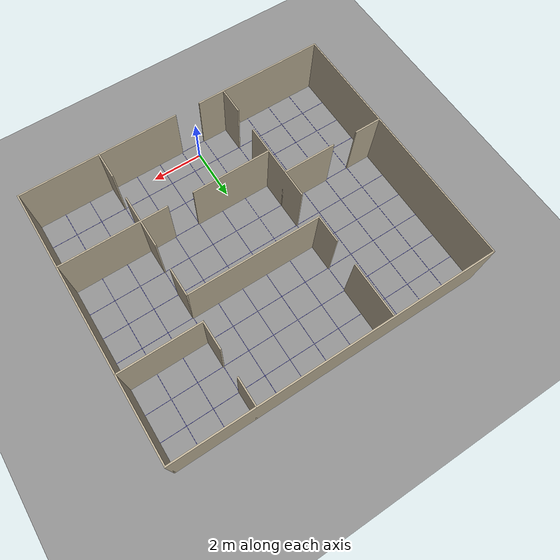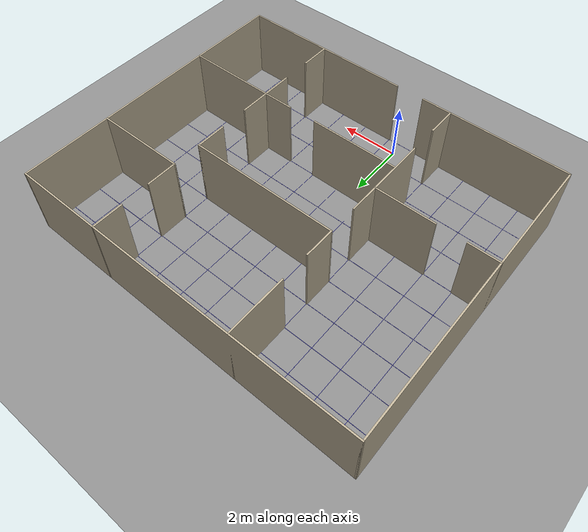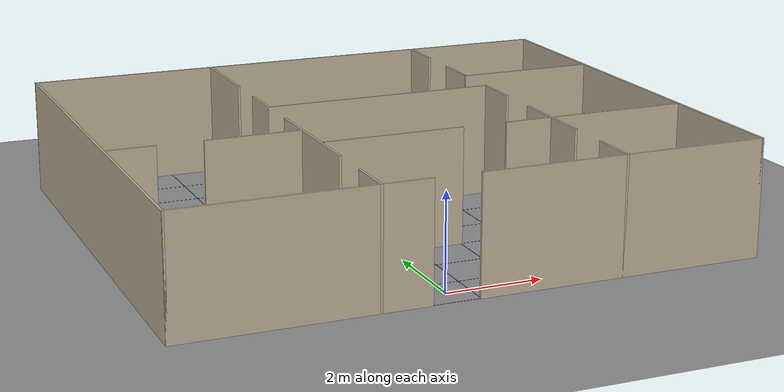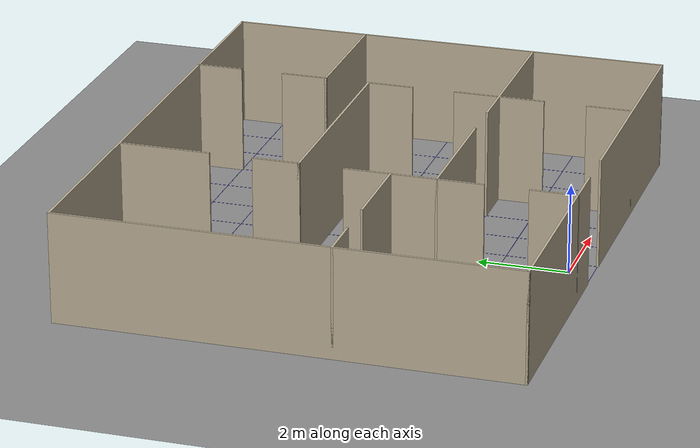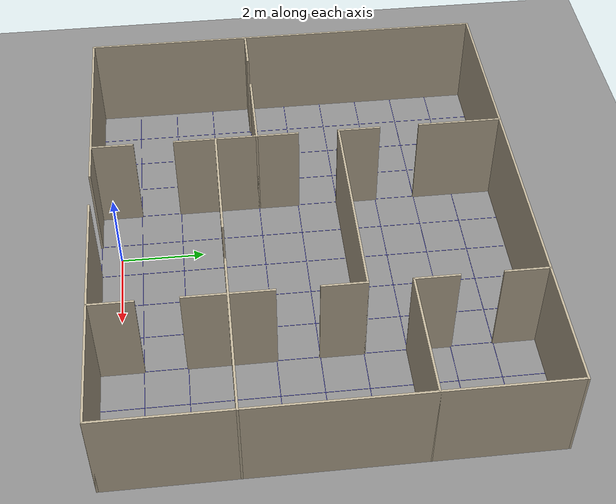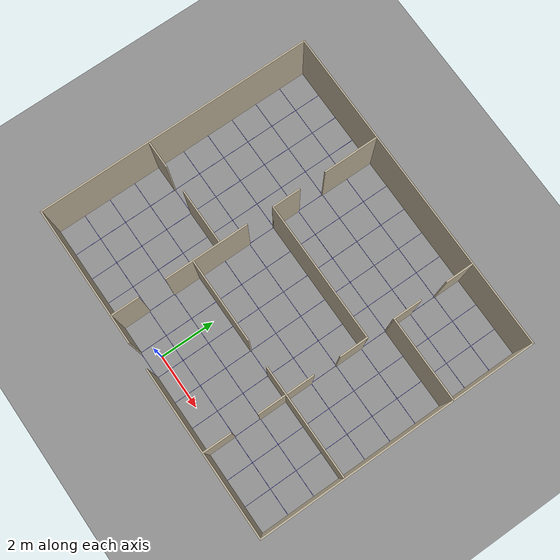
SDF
<sdf version="1.9">
 <world name="rooms_small_4">
  <physics name="1ms" type="ignore">
   <max_step_size>0.001</max_step_size>
   <real_time_factor>1.0</real_time_factor>
  </physics>
  <plugin filename="gz-sim-physics-system" name="gz::sim::systems::Physics"/>
  <plugin filename="gz-sim-sensors-system" name="gz::sim::systems::Sensors">
   <render_engine>ogre2</render_engine>
  </plugin>
  <plugin filename="gz-sim-user-commands-system" name="gz::sim::systems::UserCommands"/>
  <plugin filename="gz-sim-scene-broadcaster-system" name="gz::sim::systems::SceneBroadcaster"/>
  <plugin filename="gz-sim-imu-system" name="gz::sim::systems::Imu"/>
  <plugin filename="gz-sim-navsat-system" name="gz::sim::systems::NavSat"/>
  <scene><ambient>0.8 0.8 0.8</ambient><background>0.8 0.8 0.8</background></scene>
  <spherical_coordinates>
   <latitude_deg>-35.363262</latitude_deg>
   <longitude_deg>149.165237</longitude_deg>
   <elevation>584</elevation>
   <heading_deg>0</heading_deg>
   <surface_model>EARTH_WGS84</surface_model>
  </spherical_coordinates>
  <light type="directional" name="sun">
   <cast_shadows>false</cast_shadows>
   <pose>0 0 10 0 0 0</pose>
   <diffuse>0.9 0.9 0.9 1</diffuse>
   <direction>-0.3 0.2 -0.9</direction>
  </light>
  <model name="ground">
   <static>true</static>
   <link name="link">
    <collision name="c"><geometry><plane><normal>0 0 1</normal><size>60 60</size></plane></geometry></collision>
    <visual name="v">
     <geometry><plane><normal>0 0 1</normal><size>60 60</size></plane></geometry>
     <material><ambient>0.55 0.55 0.55 1</ambient><diffuse>0.55 0.55 0.55 1</diffuse></material>
    </visual>
   </link>
  </model>
  <model name="maze">
   <static>true</static>
   <link name="h0_0">
    <pose>0.500 9.500 1.220 0 0 0</pose>
    <collision name="c"><geometry><box><size>12.05 0.05 2.44</size></box></geometry></collision>
    <visual name="v">
     <geometry><box><size>12.05 0.05 2.44</size></box></geometry>
     <material><ambient>0.75 0.7 0.6 1</ambient><diffuse>0.75 0.7 0.6 1</diffuse></material>
    </visual>
   </link>
   <link name="h3_9">
    <pose>5.000 6.500 1.220 0 0 0</pose>
    <collision name="c"><geometry><box><size>3.05 0.05 2.44</size></box></geometry></collision>
    <visual name="v">
     <geometry><box><size>3.05 0.05 2.44</size></box></geometry>
     <material><ambient>0.75 0.7 0.6 1</ambient><diffuse>0.75 0.7 0.6 1</diffuse></material>
    </visual>
   </link>
   <link name="h4_4">
    <pose>1.000 5.500 1.220 0 0 0</pose>
    <collision name="c"><geometry><box><size>5.05 0.05 2.44</size></box></geometry></collision>
    <visual name="v">
     <geometry><box><size>5.05 0.05 2.44</size></box></geometry>
     <material><ambient>0.75 0.7 0.6 1</ambient><diffuse>0.75 0.7 0.6 1</diffuse></material>
    </visual>
   </link>
   <link name="h6_0">
    <pose>-5.000 3.500 1.220 0 0 0</pose>
    <collision name="c"><geometry><box><size>1.05 0.05 2.44</size></box></geometry></collision>
    <visual name="v">
     <geometry><box><size>1.05 0.05 2.44</size></box></geometry>
     <material><ambient>0.75 0.7 0.6 1</ambient><diffuse>0.75 0.7 0.6 1</diffuse></material>
    </visual>
   </link>
   <link name="h6_2">
    <pose>-2.500 3.500 1.220 0 0 0</pose>
    <collision name="c"><geometry><box><size>2.05 0.05 2.44</size></box></geometry></collision>
    <visual name="v">
     <geometry><box><size>2.05 0.05 2.44</size></box></geometry>
     <material><ambient>0.75 0.7 0.6 1</ambient><diffuse>0.75 0.7 0.6 1</diffuse></material>
    </visual>
   </link>
   <link name="h7_4">
    <pose>0.000 2.500 1.220 0 0 0</pose>
    <collision name="c"><geometry><box><size>3.05 0.05 2.44</size></box></geometry></collision>
    <visual name="v">
     <geometry><box><size>3.05 0.05 2.44</size></box></geometry>
     <material><ambient>0.75 0.7 0.6 1</ambient><diffuse>0.75 0.7 0.6 1</diffuse></material>
    </visual>
   </link>
   <link name="h7_8">
    <pose>4.500 2.500 1.220 0 0 0</pose>
    <collision name="c"><geometry><box><size>4.05 0.05 2.44</size></box></geometry></collision>
    <visual name="v">
     <geometry><box><size>4.05 0.05 2.44</size></box></geometry>
     <material><ambient>0.75 0.7 0.6 1</ambient><diffuse>0.75 0.7 0.6 1</diffuse></material>
    </visual>
   </link>
   <link name="h10_0">
    <pose>-3.000 -0.500 1.220 0 0 0</pose>
    <collision name="c"><geometry><box><size>5.05 0.05 2.44</size></box></geometry></collision>
    <visual name="v">
     <geometry><box><size>5.05 0.05 2.44</size></box></geometry>
     <material><ambient>0.75 0.7 0.6 1</ambient><diffuse>0.75 0.7 0.6 1</diffuse></material>
    </visual>
   </link>
   <link name="h10_6">
    <pose>3.500 -0.500 1.220 0 0 0</pose>
    <collision name="c"><geometry><box><size>6.05 0.05 2.44</size></box></geometry></collision>
    <visual name="v">
     <geometry><box><size>6.05 0.05 2.44</size></box></geometry>
     <material><ambient>0.75 0.7 0.6 1</ambient><diffuse>0.75 0.7 0.6 1</diffuse></material>
    </visual>
   </link>
   <link name="v0_0">
    <pose>-5.500 4.500 1.220 0 0 0</pose>
    <collision name="c"><geometry><box><size>0.05 10.05 2.44</size></box></geometry></collision>
    <visual name="v">
     <geometry><box><size>0.05 10.05 2.44</size></box></geometry>
     <material><ambient>0.75 0.7 0.6 1</ambient><diffuse>0.75 0.7 0.6 1</diffuse></material>
    </visual>
   </link>
   <link name="v4_0">
    <pose>-1.500 8.500 1.220 0 0 0</pose>
    <collision name="c"><geometry><box><size>0.05 2.05 2.44</size></box></geometry></collision>
    <visual name="v">
     <geometry><box><size>0.05 2.05 2.44</size></box></geometry>
     <material><ambient>0.75 0.7 0.6 1</ambient><diffuse>0.75 0.7 0.6 1</diffuse></material>
    </visual>
   </link>
   <link name="v4_3">
    <pose>-1.500 6.000 1.220 0 0 0</pose>
    <collision name="c"><geometry><box><size>0.05 1.05 2.44</size></box></geometry></collision>
    <visual name="v">
     <geometry><box><size>0.05 1.05 2.44</size></box></geometry>
     <material><ambient>0.75 0.7 0.6 1</ambient><diffuse>0.75 0.7 0.6 1</diffuse></material>
    </visual>
   </link>
   <link name="v4_5">
    <pose>-1.500 3.000 1.220 0 0 0</pose>
    <collision name="c"><geometry><box><size>0.05 3.05 2.44</size></box></geometry></collision>
    <visual name="v">
     <geometry><box><size>0.05 3.05 2.44</size></box></geometry>
     <material><ambient>0.75 0.7 0.6 1</ambient><diffuse>0.75 0.7 0.6 1</diffuse></material>
    </visual>
   </link>
   <link name="v4_9">
    <pose>-1.500 0.000 1.220 0 0 0</pose>
    <collision name="c"><geometry><box><size>0.05 1.05 2.44</size></box></geometry></collision>
    <visual name="v">
     <geometry><box><size>0.05 1.05 2.44</size></box></geometry>
     <material><ambient>0.75 0.7 0.6 1</ambient><diffuse>0.75 0.7 0.6 1</diffuse></material>
    </visual>
   </link>
   <link name="v9_0">
    <pose>3.500 9.000 1.220 0 0 0</pose>
    <collision name="c"><geometry><box><size>0.05 1.05 2.44</size></box></geometry></collision>
    <visual name="v">
     <geometry><box><size>0.05 1.05 2.44</size></box></geometry>
     <material><ambient>0.75 0.7 0.6 1</ambient><diffuse>0.75 0.7 0.6 1</diffuse></material>
    </visual>
   </link>
   <link name="v9_2">
    <pose>3.500 7.000 1.220 0 0 0</pose>
    <collision name="c"><geometry><box><size>0.05 1.05 2.44</size></box></geometry></collision>
    <visual name="v">
     <geometry><box><size>0.05 1.05 2.44</size></box></geometry>
     <material><ambient>0.75 0.7 0.6 1</ambient><diffuse>0.75 0.7 0.6 1</diffuse></material>
    </visual>
   </link>
   <link name="v9_4">
    <pose>3.500 5.000 1.220 0 0 0</pose>
    <collision name="c"><geometry><box><size>0.05 1.05 2.44</size></box></geometry></collision>
    <visual name="v">
     <geometry><box><size>0.05 1.05 2.44</size></box></geometry>
     <material><ambient>0.75 0.7 0.6 1</ambient><diffuse>0.75 0.7 0.6 1</diffuse></material>
    </visual>
   </link>
   <link name="v9_6">
    <pose>3.500 2.500 1.220 0 0 0</pose>
    <collision name="c"><geometry><box><size>0.05 2.05 2.44</size></box></geometry></collision>
    <visual name="v">
     <geometry><box><size>0.05 2.05 2.44</size></box></geometry>
     <material><ambient>0.75 0.7 0.6 1</ambient><diffuse>0.75 0.7 0.6 1</diffuse></material>
    </visual>
   </link>
   <link name="v9_9">
    <pose>3.500 0.000 1.220 0 0 0</pose>
    <collision name="c"><geometry><box><size>0.05 1.05 2.44</size></box></geometry></collision>
    <visual name="v">
     <geometry><box><size>0.05 1.05 2.44</size></box></geometry>
     <material><ambient>0.75 0.7 0.6 1</ambient><diffuse>0.75 0.7 0.6 1</diffuse></material>
    </visual>
   </link>
   <link name="v12_0">
    <pose>6.500 4.500 1.220 0 0 0</pose>
    <collision name="c"><geometry><box><size>0.05 10.05 2.44</size></box></geometry></collision>
    <visual name="v">
     <geometry><box><size>0.05 10.05 2.44</size></box></geometry>
     <material><ambient>0.75 0.7 0.6 1</ambient><diffuse>0.75 0.7 0.6 1</diffuse></material>
    </visual>
   </link>
   <link name="gh0">
    <pose>0.500 9.500 0.001 0 0 0</pose>
    <visual name="v">
     <geometry><box><size>12.0 0.01 0.002</size></box></geometry>
     <material><ambient>0.2 0.2 0.8 1</ambient><diffuse>0.2 0.2 0.8 1</diffuse></material>
    </visual>
   </link>
   <link name="gh1">
    <pose>0.500 8.500 0.001 0 0 0</pose>
    <visual name="v">
     <geometry><box><size>12.0 0.01 0.002</size></box></geometry>
     <material><ambient>0.2 0.2 0.8 1</ambient><diffuse>0.2 0.2 0.8 1</diffuse></material>
    </visual>
   </link>
   <link name="gh2">
    <pose>0.500 7.500 0.001 0 0 0</pose>
    <visual name="v">
     <geometry><box><size>12.0 0.01 0.002</size></box></geometry>
     <material><ambient>0.2 0.2 0.8 1</ambient><diffuse>0.2 0.2 0.8 1</diffuse></material>
    </visual>
   </link>
   <link name="gh3">
    <pose>0.500 6.500 0.001 0 0 0</pose>
    <visual name="v">
     <geometry><box><size>12.0 0.01 0.002</size></box></geometry>
     <material><ambient>0.2 0.2 0.8 1</ambient><diffuse>0.2 0.2 0.8 1</diffuse></material>
    </visual>
   </link>
   <link name="gh4">
    <pose>0.500 5.500 0.001 0 0 0</pose>
    <visual name="v">
     <geometry><box><size>12.0 0.01 0.002</size></box></geometry>
     <material><ambient>0.2 0.2 0.8 1</ambient><diffuse>0.2 0.2 0.8 1</diffuse></material>
    </visual>
   </link>
   <link name="gh5">
    <pose>0.500 4.500 0.001 0 0 0</pose>
    <visual name="v">
     <geometry><box><size>12.0 0.01 0.002</size></box></geometry>
     <material><ambient>0.2 0.2 0.8 1</ambient><diffuse>0.2 0.2 0.8 1</diffuse></material>
    </visual>
   </link>
   <link name="gh6">
    <pose>0.500 3.500 0.001 0 0 0</pose>
    <visual name="v">
     <geometry><box><size>12.0 0.01 0.002</size></box></geometry>
     <material><ambient>0.2 0.2 0.8 1</ambient><diffuse>0.2 0.2 0.8 1</diffuse></material>
    </visual>
   </link>
   <link name="gh7">
    <pose>0.500 2.500 0.001 0 0 0</pose>
    <visual name="v">
     <geometry><box><size>12.0 0.01 0.002</size></box></geometry>
     <material><ambient>0.2 0.2 0.8 1</ambient><diffuse>0.2 0.2 0.8 1</diffuse></material>
    </visual>
   </link>
   <link name="gh8">
    <pose>0.500 1.500 0.001 0 0 0</pose>
    <visual name="v">
     <geometry><box><size>12.0 0.01 0.002</size></box></geometry>
     <material><ambient>0.2 0.2 0.8 1</ambient><diffuse>0.2 0.2 0.8 1</diffuse></material>
    </visual>
   </link>
   <link name="gh9">
    <pose>0.500 0.500 0.001 0 0 0</pose>
    <visual name="v">
     <geometry><box><size>12.0 0.01 0.002</size></box></geometry>
     <material><ambient>0.2 0.2 0.8 1</ambient><diffuse>0.2 0.2 0.8 1</diffuse></material>
    </visual>
   </link>
   <link name="gh10">
    <pose>0.500 -0.500 0.001 0 0 0</pose>
    <visual name="v">
     <geometry><box><size>12.0 0.01 0.002</size></box></geometry>
     <material><ambient>0.2 0.2 0.8 1</ambient><diffuse>0.2 0.2 0.8 1</diffuse></material>
    </visual>
   </link>
   <link name="gv0">
    <pose>-5.500 4.500 0.001 0 0 0</pose>
    <visual name="v">
     <geometry><box><size>0.01 10.0 0.002</size></box></geometry>
     <material><ambient>0.2 0.2 0.8 1</ambient><diffuse>0.2 0.2 0.8 1</diffuse></material>
    </visual>
   </link>
   <link name="gv1">
    <pose>-4.500 4.500 0.001 0 0 0</pose>
    <visual name="v">
     <geometry><box><size>0.01 10.0 0.002</size></box></geometry>
     <material><ambient>0.2 0.2 0.8 1</ambient><diffuse>0.2 0.2 0.8 1</diffuse></material>
    </visual>
   </link>
   <link name="gv2">
    <pose>-3.500 4.500 0.001 0 0 0</pose>
    <visual name="v">
     <geometry><box><size>0.01 10.0 0.002</size></box></geometry>
     <material><ambient>0.2 0.2 0.8 1</ambient><diffuse>0.2 0.2 0.8 1</diffuse></material>
    </visual>
   </link>
   <link name="gv3">
    <pose>-2.500 4.500 0.001 0 0 0</pose>
    <visual name="v">
     <geometry><box><size>0.01 10.0 0.002</size></box></geometry>
     <material><ambient>0.2 0.2 0.8 1</ambient><diffuse>0.2 0.2 0.8 1</diffuse></material>
    </visual>
   </link>
   <link name="gv4">
    <pose>-1.500 4.500 0.001 0 0 0</pose>
    <visual name="v">
     <geometry><box><size>0.01 10.0 0.002</size></box></geometry>
     <material><ambient>0.2 0.2 0.8 1</ambient><diffuse>0.2 0.2 0.8 1</diffuse></material>
    </visual>
   </link>
   <link name="gv5">
    <pose>-0.500 4.500 0.001 0 0 0</pose>
    <visual name="v">
     <geometry><box><size>0.01 10.0 0.002</size></box></geometry>
     <material><ambient>0.2 0.2 0.8 1</ambient><diffuse>0.2 0.2 0.8 1</diffuse></material>
    </visual>
   </link>
   <link name="gv6">
    <pose>0.500 4.500 0.001 0 0 0</pose>
    <visual name="v">
     <geometry><box><size>0.01 10.0 0.002</size></box></geometry>
     <material><ambient>0.2 0.2 0.8 1</ambient><diffuse>0.2 0.2 0.8 1</diffuse></material>
    </visual>
   </link>
   <link name="gv7">
    <pose>1.500 4.500 0.001 0 0 0</pose>
    <visual name="v">
     <geometry><box><size>0.01 10.0 0.002</size></box></geometry>
     <material><ambient>0.2 0.2 0.8 1</ambient><diffuse>0.2 0.2 0.8 1</diffuse></material>
    </visual>
   </link>
   <link name="gv8">
    <pose>2.500 4.500 0.001 0 0 0</pose>
    <visual name="v">
     <geometry><box><size>0.01 10.0 0.002</size></box></geometry>
     <material><ambient>0.2 0.2 0.8 1</ambient><diffuse>0.2 0.2 0.8 1</diffuse></material>
    </visual>
   </link>
   <link name="gv9">
    <pose>3.500 4.500 0.001 0 0 0</pose>
    <visual name="v">
     <geometry><box><size>0.01 10.0 0.002</size></box></geometry>
     <material><ambient>0.2 0.2 0.8 1</ambient><diffuse>0.2 0.2 0.8 1</diffuse></material>
    </visual>
   </link>
   <link name="gv10">
    <pose>4.500 4.500 0.001 0 0 0</pose>
    <visual name="v">
     <geometry><box><size>0.01 10.0 0.002</size></box></geometry>
     <material><ambient>0.2 0.2 0.8 1</ambient><diffuse>0.2 0.2 0.8 1</diffuse></material>
    </visual>
   </link>
   <link name="gv11">
    <pose>5.500 4.500 0.001 0 0 0</pose>
    <visual name="v">
     <geometry><box><size>0.01 10.0 0.002</size></box></geometry>
     <material><ambient>0.2 0.2 0.8 1</ambient><diffuse>0.2 0.2 0.8 1</diffuse></material>
    </visual>
   </link>
   <link name="gv12">
    <pose>6.500 4.500 0.001 0 0 0</pose>
    <visual name="v">
     <geometry><box><size>0.01 10.0 0.002</size></box></geometry>
     <material><ambient>0.2 0.2 0.8 1</ambient><diffuse>0.2 0.2 0.8 1</diffuse></material>
    </visual>
   </link>
  </model>
 </world>
</sdf>
